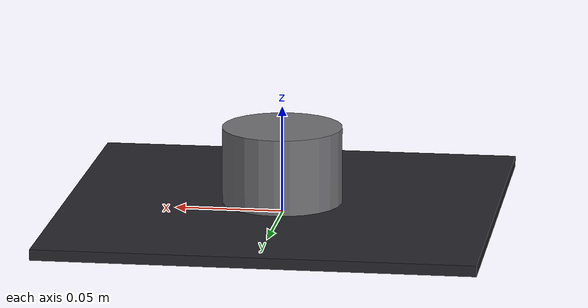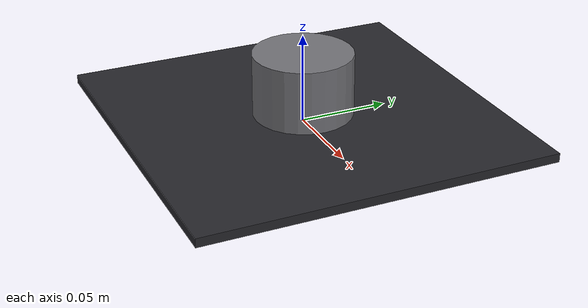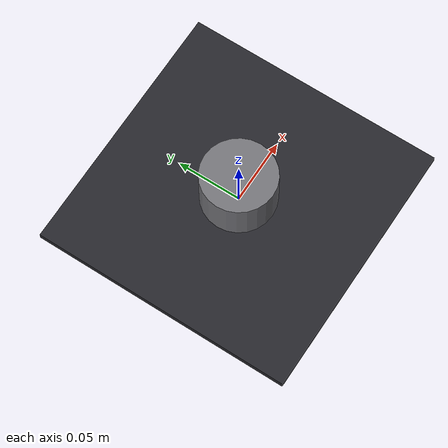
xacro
<?xml version="1.0"?>
<robot name="prevera_sentinel" xmlns:xacro="http://www.ros.org/wiki/xacro">

  <!-- Height of the scan window above the floor. 0.02 = floor mount (DR-02). The original design was 0.65
       (0.55 m mast on a 0.10 m base); pass lidar_mount_height:=0.65 to xacro to draw that rig. -->
  <xacro:arg name="lidar_mount_height" default="0.02"/>
  <xacro:property name="lidar_mount_height" value="$(arg lidar_mount_height)"/>
  <!-- RPLIDAR C1 housing, approximate: 0.056 m across, 0.041 m tall (datasheet); visual only. -->
  <xacro:property name="lidar_radius" value="0.028"/>
  <xacro:property name="lidar_height" value="0.041"/>

  <!-- World-fixed footprint of the sentinel unit: the tile the sensor stands on. -->
  <link name="base_link">
    <visual>
      <origin xyz="0 0 0.0025" rpy="0 0 0"/>
      <geometry>
        <box size="0.20 0.20 0.005"/>
      </geometry>
      <material name="prevera_charcoal">
        <color rgba="0.15 0.15 0.17 1.0"/>
      </material>
    </visual>
  </link>

  <!-- The sensor body, drawn so that its scan window sits at lidar_mount_height. -->
  <link name="lidar_mount">
    <visual>
      <origin xyz="0 0 ${lidar_height / 2}" rpy="0 0 0"/>
      <geometry>
        <cylinder length="${lidar_height}" radius="${lidar_radius}"/>
      </geometry>
      <material name="prevera_steel">
        <color rgba="0.45 0.45 0.47 1.0"/>
      </material>
    </visual>
  </link>

  <xacro:property name="mast_length" value="${lidar_mount_height - lidar_height / 2 - 0.005}"/>
  <xacro:if value="${mast_length > 0.001}">
    <link name="lidar_mast">
      <visual>
        <origin xyz="0 0 ${mast_length / 2}" rpy="0 0 0"/>
        <geometry>
          <cylinder length="${mast_length}" radius="0.012"/>
        </geometry>
        <material name="prevera_steel"/>
      </visual>
    </link>
    <joint name="base_to_mast" type="fixed">
      <parent link="base_link"/>
      <child  link="lidar_mast"/>
      <origin xyz="0 0 0.005" rpy="0 0 0"/>
    </joint>
  </xacro:if>

  <!-- Frame the rplidar driver publishes scans in (must match 'frame_id' in rplidar_c1.yaml and fall_detector.yaml). -->
  <link name="laser"/>

  <joint name="base_to_mount" type="fixed">
    <parent link="base_link"/>
    <child  link="lidar_mount"/>
    <origin xyz="0 0 ${lidar_mount_height - lidar_height / 2}" rpy="0 0 0"/>
  </joint>

  <joint name="mount_to_laser" type="fixed">
    <parent link="lidar_mount"/>
    <child  link="laser"/>
    <origin xyz="0 0 ${lidar_height / 2}" rpy="0 0 0"/>
  </joint>

</robot>
